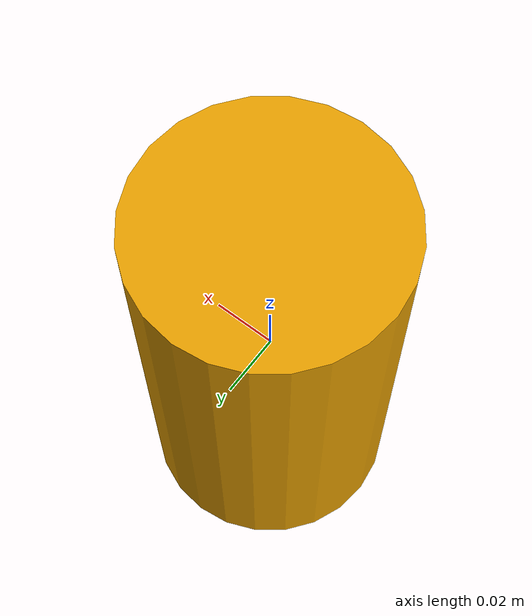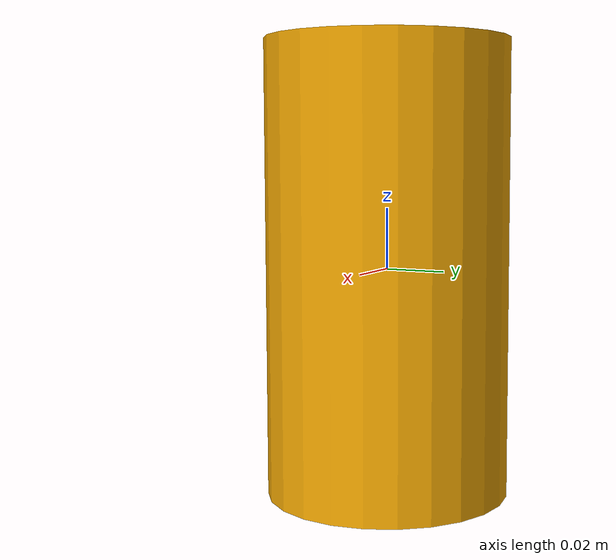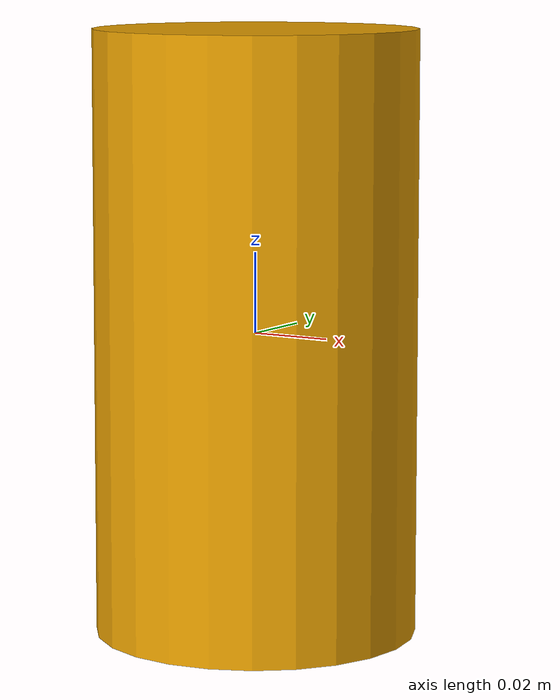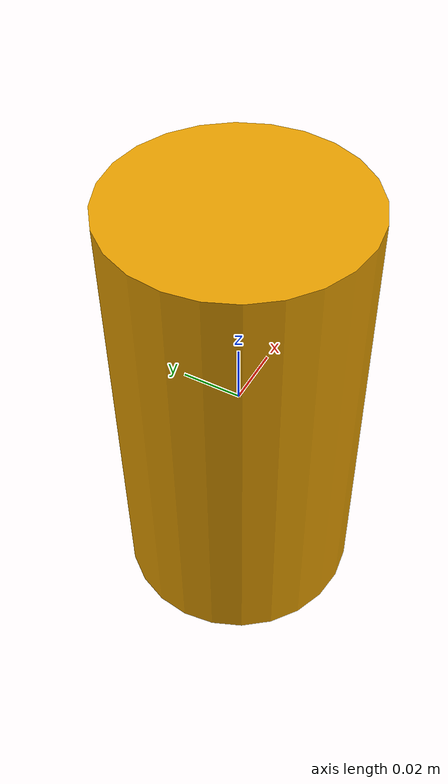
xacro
<?xml version="1.0" encoding="UTF-8"?>
<robot xmlns:xacro="http://ros.org/wiki/xacro" name="cylinder">

    <!-- arguments -->
    <xacro:arg name="cylinder_mass" default="0.5"/>
    <xacro:arg name="cylinder_radius" default="0.04"/>
    <xacro:arg name="cylinder_length" default="0.15"/>

    <!-- inertia_scaling_factor = 1 means ground truth as calculated by formula -->
    <xacro:arg name="inertia_scaling_factor" default="1"/>

    <xacro:property name="link_name" value="cylinder_link"/>

    <xacro:include filename="$(find description)/urdf/xacro_macros/inertia_tensors.xacro"/>

    <link name="${link_name}">
        <visual>
            <origin xyz="0 0 0" rpy="0 0 0" />
            <geometry>
                <cylinder radius="$(arg cylinder_radius)" length="$(arg cylinder_length)"/>
            </geometry>
        </visual>
        <collision>
            <origin xyz="0 0 0" rpy="0 0 0" />
            <geometry>
                <cylinder radius="$(arg cylinder_radius)" length="$(arg cylinder_length)"/>
            </geometry>
        </collision>
        <inertial>
            <origin xyz="0 0 0" rpy="0 0 0"/>
            <mass value="$(arg cylinder_mass)"/>
            <xacro:cylinder_inertia_mod m="$(arg cylinder_mass)" r="$(arg cylinder_radius)" h="$(arg cylinder_length)" scaling_factor="$(arg inertia_scaling_factor)"/>
        </inertial>
    </link>

    <xacro:include filename="$(find description)/urdf/environment/object.gazebo.xacro"/>
</robot>

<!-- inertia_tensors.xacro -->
<robot xmlns:xacro="http://www.ros.org/wiki/xacro">

  <!-- x = depth, y = width, z = height -->
  <xacro:macro name="cuboid_inertia" params="m x y z">
    <inertia ixx="${(1.0 / 12.0) * m * (y * y + z * z)}" ixy="0.0" ixz="0.0"
	     iyy="${(1.0 / 12.0) * m * (x * x + z * z)}" iyz="0.0"
	     izz="${(1.0 / 12.0) * m * (x * x + y * y)}"/>
  </xacro:macro>

  <xacro:macro name="ellipsoid_inertia" params="m x y z">
    <inertia ixx="${(1.0 / 5.0) * m * (y * y + z * z)}" ixy="0.0" ixz="0.0"
	     iyy="${(1.0 / 5.0) * m * (x * x + z * z)}" iyz="0.0"
	     izz="${(1.0 / 5.0) * m * (x * x + y * y)}"/>
  </xacro:macro>

  <xacro:macro name="sphere_inertia" params="m r">
    <inertia ixx="${(2.0 / 5.0) * m * (r * r)}" ixy="0.0" ixz="0.0"
	     iyy="${(2.0 / 5.0) * m * (r * r)}" iyz="0.0"
	     izz="${(2.0 / 5.0) * m * (r * r)}"/>
  </xacro:macro>

  <!-- Assuming z-axis goes along height of cylinder -->
  <xacro:macro name="cylinder_inertia" params="m r h">
    <inertia ixx="${(1.0 / 12.0) * m * (3 * r * r + h * h)}" ixy="0.0" ixz="0.0"
	     iyy="${(1.0 / 12.0) * m * (3 * r * r + h * h)}" iyz="0.0"
	     izz="${(1.0 / 2.0) * m * (r * r)}"/>
  </xacro:macro>

  <xacro:macro name="cylinder_inertia_mod" params="m r h scaling_factor">
    <inertia ixx="${(scaling_factor / 12.0) * m * (3 * r * r + h * h)}" ixy="0.0" ixz="0.0"
	     iyy="${(scaling_factor / 12.0) * m * (3 * r * r + h * h)}" iyz="0.0"
	     izz="${(scaling_factor / 2.0) * m * (r * r)}"/>
  </xacro:macro>

</robot>
